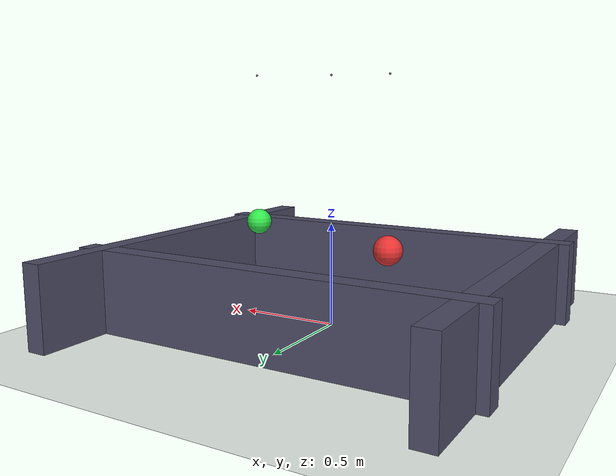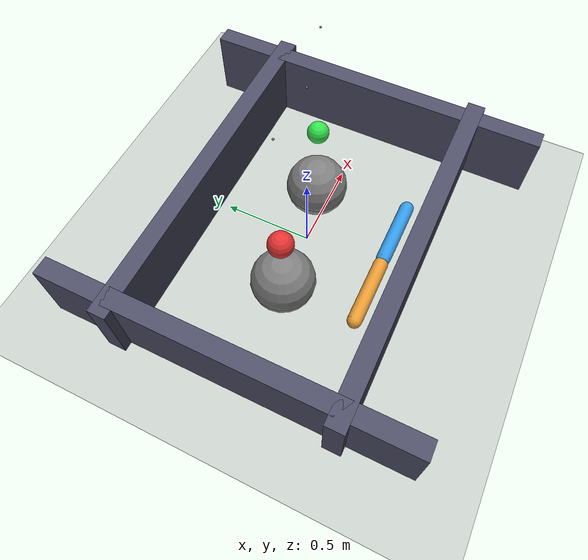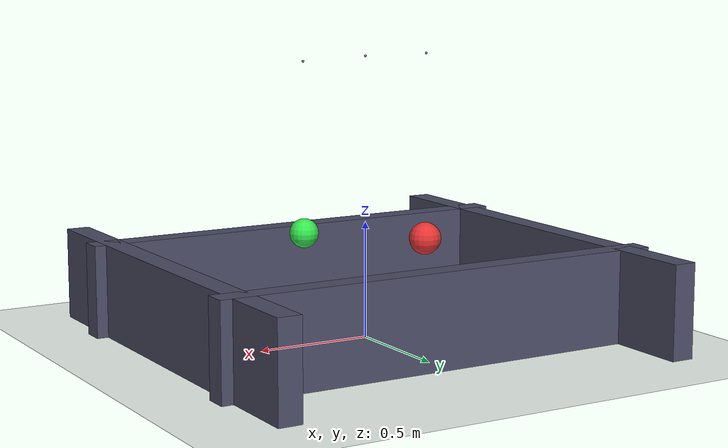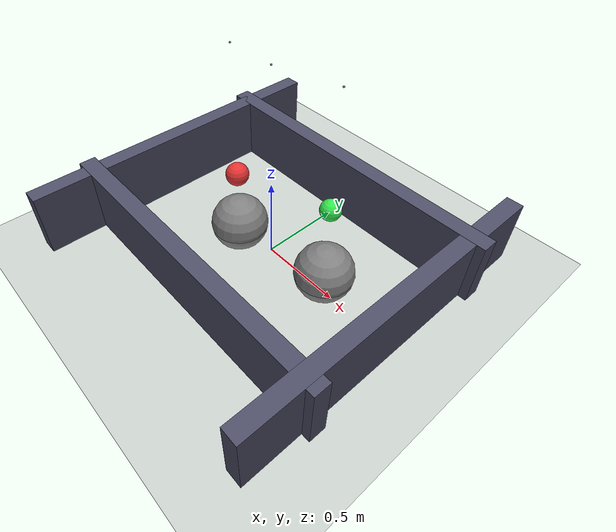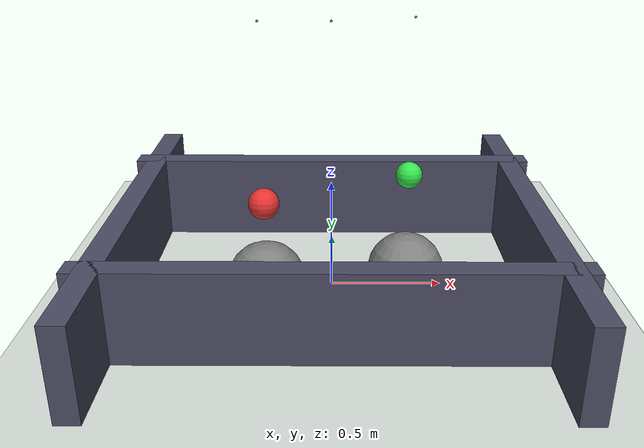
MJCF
<mujoco model="pinball_table">
  <compiler angle="radian"/>
  <option timestep="0.002" integrator="Euler" iterations="100" tolerance="1e-8" gravity="0 0 -9.81" cone="pyramidal"/>
  <worldbody>
    <light directional="true" pos="0 -2 5" dir="0 0.3 -1" diffuse="0.9 0.9 0.9" specular="0.3 0.3 0.3"/>
    <geom name="floor" type="plane" size="5 5 0.1" contype="1" conaffinity="7"/>
    <geom name="wallN" type="box" size="1.0 0.05 0.2" pos="0 0.6 0.2" rgba="0.3 0.3 0.4 1" contype="0" conaffinity="0"/>
    <geom name="wallS" type="box" size="1.0 0.05 0.2" pos="0 -0.6 0.2" rgba="0.3 0.3 0.4 1" contype="0" conaffinity="0"/>
    <geom name="wallE" type="box" size="0.05 1.0 0.2" pos="0.9 0 0.2" rgba="0.3 0.3 0.4 1" contype="0" conaffinity="0"/>
    <geom name="wallW" type="box" size="0.05 1.0 0.2" pos="-0.9 0 0.2" rgba="0.3 0.3 0.4 1" contype="0" conaffinity="0"/>
    <site name="padA" pos="-0.3 0 0.02" size="0.18 0.18 0.03"/>
    <site name="padB" pos="0.35 0.1 0.02" size="0.18 0.18 0.03"/>
    <site name="eye0" pos="-0.3 0 1.2" quat="0 1 0 0"/>
    <site name="eye1" pos="0 0 1.2" quat="0 1 0 0"/>
    <site name="eye2" pos="0.35 0.1 1.2" quat="0 1 0 0"/>
    <body name="flipL" pos="-0.2 -0.45 0.08">
      <joint name="flipL_j" type="hinge" axis="0 0 1" limited="true" range="-0.6 0.6"/>
      <geom name="flipL_geom" type="capsule" size="0.04 0.18" quat="0.707 0 0.707 0" rgba="0.9 0.6 0.2 1" mass="0.2" contype="4" conaffinity="3"/>
    </body>
    <body name="flipR" pos="0.2 -0.45 0.08">
      <joint name="flipR_j" type="hinge" axis="0 0 1" limited="true" range="-0.6 0.6"/>
      <geom name="flipR_geom" type="capsule" size="0.04 0.18" quat="0.707 0 0.707 0" rgba="0.2 0.6 0.9 1" mass="0.2" contype="4" conaffinity="3"/>
    </body>
    <body name="ballA" pos="-0.3 0 0.4">
      <freejoint name="freeA"/>
      <geom name="ballA_geom" type="sphere" size="0.07" rgba="0.9 0.2 0.2 1" mass="0.3" contype="2" conaffinity="7"/>
      <site name="imuA"/>
      <site name="gaugeA" pos="0.05 0 0"/>
    </body>
    <body name="ballB" pos="0.35 0.1 0.5">
      <freejoint name="freeB"/>
      <geom name="ballB_geom" type="sphere" size="0.06" rgba="0.2 0.9 0.3 1" mass="0.25" contype="2" conaffinity="7"/>
      <site name="imuB"/>
    </body>
  </worldbody>
  <actuator>
    <motor name="driveL" joint="flipL_j" gear="1"/>
    <motor name="driveR" joint="flipR_j" gear="1"/>
  </actuator>
  <sensor>
    <touch site="padA"/>
    <touch site="padB"/>
    <accelerometer site="imuA"/>
    <accelerometer site="imuB"/>
    <force site="gaugeA"/>
    <torque site="gaugeA"/>
    <rangefinder site="eye0"/>
    <rangefinder site="eye1"/>
    <rangefinder site="eye2" data="dist normal"/>
    <jointpos joint="flipL_j"/>
    <jointpos joint="flipR_j"/>
    <actuatorfrc actuator="driveL"/>
    <jointlimitfrc joint="flipL_j"/>
  </sensor>
</mujoco>
